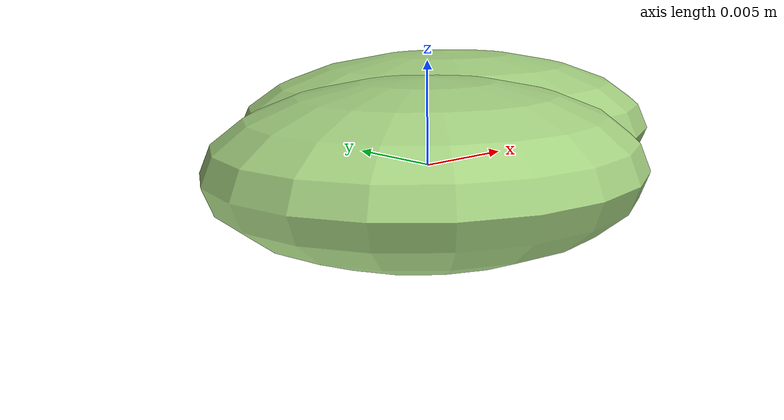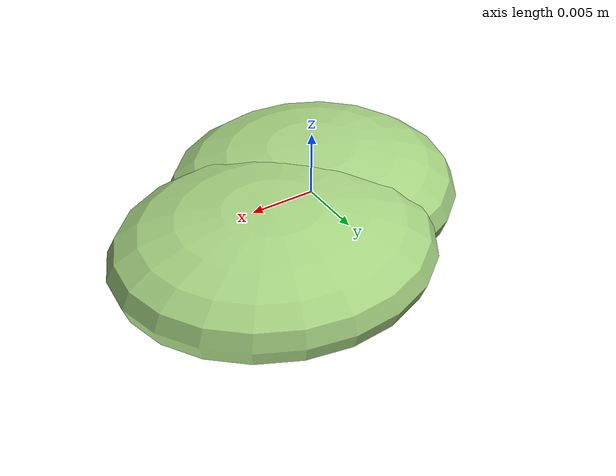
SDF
<?xml version="1.0" ?>
<!-- |    This document was autogenerated by xmacro from data/veggie_template/veggie_base.sdf.xacro  | -->
<!-- |    EDITING THIS FILE BY HAND IS NOT RECOMMENDED                                               | -->
<sdf version="1.8">
	<!-- Parameters -->
	<!-- Base -->
	<!-- Joint 0 -->
	<!-- Link 1 -->
	<!-- Joint 1 -->
	<!-- Link 2 -->
	<!-- Primitives -->
	<!-- All dimensions are half -->
	<!-- Object -->
	<model name="veggie">
		<!-- link0 -->
		<link name="link0">
			<inertial>
				<mass>0.0019457844253876419</mass>
				<inertia>
					<ixx>4.7679667743971455e-08</ixx>
					<ixy>0</ixy>
					<ixz>0</ixz>
					<iyy>5.199782325580529e-08</iyy>
					<iyz>0</iyz>
					<izz>8.583350209011761e-08</izz>
				</inertia>
			</inertial>
			<visual name="link0_visual">
				<pose>0 0 0 0 0 0</pose>
				<geometry>
					<ellipsoid>
						<radii>0.010762409217050576 0.010233927420197662 0.004217482257796494</radii>
					</ellipsoid>
				</geometry>
				<material>
					<ambient>0.659 0.839 0.514 1</ambient>
					<diffuse>0.659 0.839 0.514 1</diffuse>
					<specular>0 0 0 0</specular>
					<emissive>0 0 0 1</emissive>
				</material>
			</visual>
			<collision name="link0_collision">
				<pose>0 0 0 0 0 0 </pose>
				<geometry>
					<ellipsoid>
						<radii>0.010762409217050576 0.010233927420197662 0.004217482257796494</radii>
					</ellipsoid>
				</geometry>
			</collision>
		</link>
		<!-- link1 -->
		<joint name="joint0" type="fixed">
			<pose relative_to="link0">0.006891085350979882 0.005720997269586842 0.0005808341798140252 0.0 0.0 0.0</pose>
			<parent>link0</parent>
			<child>link1</child>
		</joint>
		<link name="link1">
			<pose relative_to="joint0">0 0 0 0 0 0</pose>
			<inertial>
				<mass>0.0023082953612396312</mass>
				<inertia>
					<ixx>6.264523708553342e-08</ixx>
					<ixy>0</ixy>
					<ixz>0</ixz>
					<iyy>7.537993445289738e-08</iyy>
					<iyz>0</iyz>
					<izz>1.217102982764566e-07</izz>
				</inertia>
			</inertial>
			<visual name="link1_visual">
				<pose>0 0 0 0 0 0</pose>
				<geometry>
					<ellipsoid>
						<radii>0.012066925616236355 0.01086397984337358 0.004203549511735417</radii>
					</ellipsoid>
				</geometry>
				<material>
					<ambient>0.659 0.839 0.514 1</ambient>
					<diffuse>0.659 0.839 0.514 1</diffuse>
					<specular>0 0 0 0</specular>
					<emissive>0 0 0 1</emissive>
				</material>
			</visual>
			<collision name="link1_collision">
				<pose>0 0 0 0 0 0 </pose>
				<geometry>
					<ellipsoid>
						<radii>0.012066925616236355 0.01086397984337358 0.004203549511735417</radii>
					</ellipsoid>
				</geometry>
			</collision>
		</link>
		<!-- link2 -->
	</model>
</sdf>
